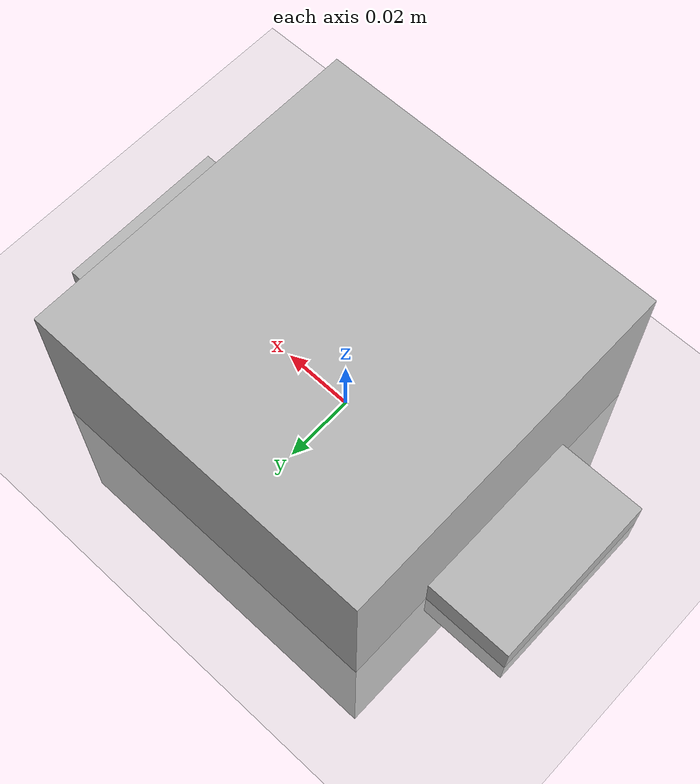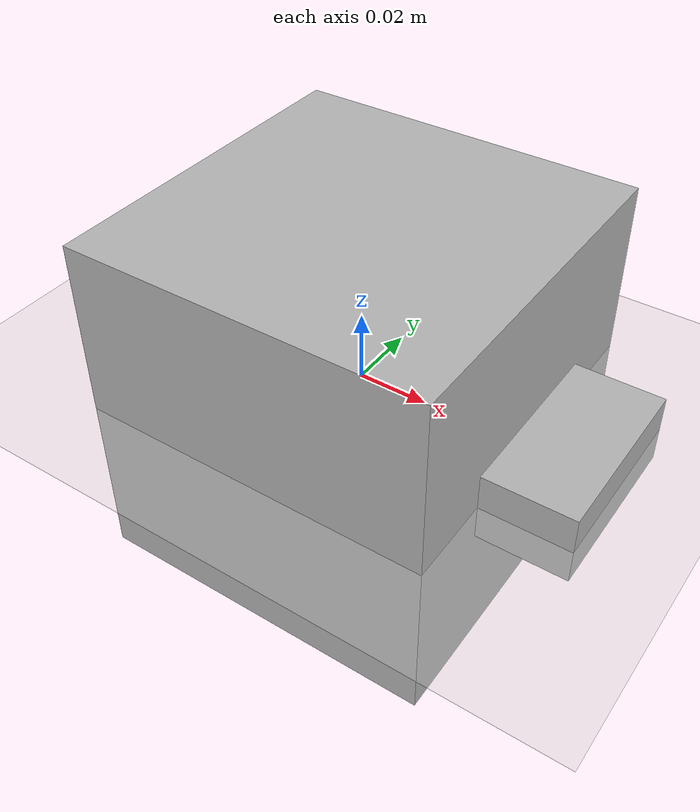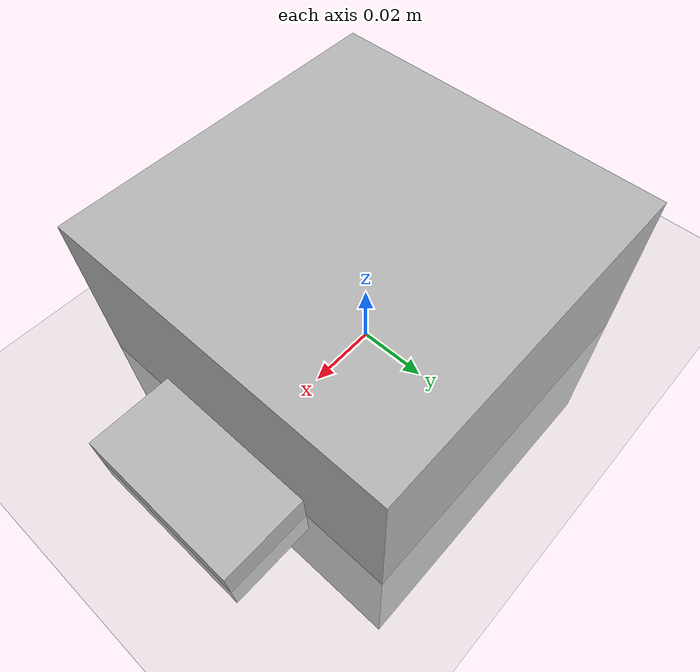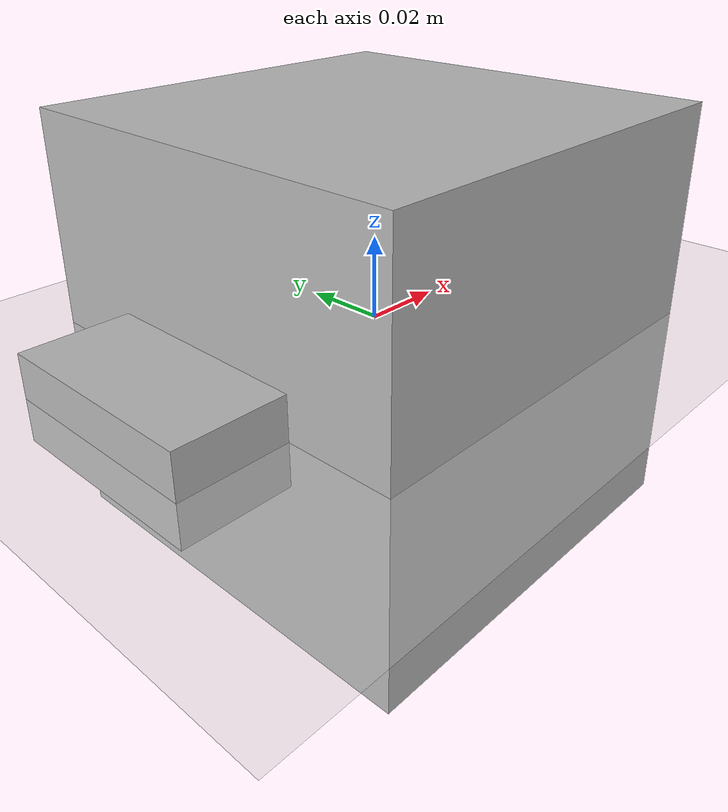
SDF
<?xml version="1.0" ?>
<sdf version="1.7">
  <world name="empty_walk_bot">

    <include>
      <uri>https://fuel.ignitionrobotics.org/1.0/OpenRobotics/models/Sun</uri>
    </include>

    <include>
      <uri>https://fuel.ignitionrobotics.org/1.0/OpenRobotics/models/Ground Plane</uri>
    </include>

    <model name='walk_bot'>
      <link name='dummy'>
        <inertial>
          <pose>0 0 0 0 0 0</pose>
          <mass>1</mass>
          <inertia>
            <ixx>0.00167</ixx>
            <ixy>0</ixy>
            <ixz>0</ixz>
            <iyy>0.00167</iyy>
            <iyz>0</iyz>
            <izz>0.00167</izz>
          </inertia>
        </inertial>
        <collision name='dummy_fixed_joint_lump__base_link_collision'>
          <pose>0 0 0 0 0 0</pose>
          <geometry>
            <box>
              <size>0.1 0.1 0.1</size>
            </box>
          </geometry>
        </collision>
        <visual name='dummy_fixed_joint_lump__base_link_visual'>
          <pose>0 0 0 0 0 0</pose>
          <geometry>
            <box>
              <size>0.1 0.1 0.1</size>
            </box>
          </geometry>
        </visual>
      </link>
      <joint name='l_hip_pitch' type='revolute'>
        <pose relative_to='dummy'>0 0 0 0 0 0</pose>
        <parent>dummy</parent>
        <child>l_hip1</child>
        <axis>
          <xyz>0 1 0</xyz>
          <limit>
            <lower>-3.1400000000000001</lower>
            <upper>3.1400000000000001</upper>
            <effort>20</effort>
            <velocity>2</velocity>
          </limit>
          <dynamics>
            <spring_reference>0</spring_reference>
            <spring_stiffness>0</spring_stiffness>
          </dynamics>
        </axis>
      </joint>
      <link name='l_hip1'>
        <pose relative_to='l_hip_pitch'>0 0 0 0 0 0</pose>
        <inertial>
          <pose>0 0 0 0 0 0</pose>
          <mass>0.001</mass>
          <inertia>
            <ixx>1.0000000000000001e-05</ixx>
            <ixy>0</ixy>
            <ixz>0</ixz>
            <iyy>1.0000000000000001e-05</iyy>
            <iyz>0</iyz>
            <izz>1.0000000000000001e-05</izz>
          </inertia>
        </inertial>
      </link>
      <joint name='l_hip_roll' type='revolute'>
        <pose relative_to='l_hip1'>0 0 0 0 0 0</pose>
        <parent>l_hip1</parent>
        <child>l_hip2</child>
        <axis>
          <xyz>1 0 0</xyz>
          <limit>
            <lower>-3.1400000000000001</lower>
            <upper>3.1400000000000001</upper>
            <effort>20</effort>
            <velocity>2</velocity>
          </limit>
          <dynamics>
            <spring_reference>0</spring_reference>
            <spring_stiffness>0</spring_stiffness>
          </dynamics>
        </axis>
      </joint>
      <link name='l_hip2'>
        <pose relative_to='l_hip_roll'>0 0 0 0 0 0</pose>
        <inertial>
          <pose>0 0 0 0 0 0</pose>
          <mass>0.001</mass>
          <inertia>
            <ixx>1.0000000000000001e-05</ixx>
            <ixy>0</ixy>
            <ixz>0</ixz>
            <iyy>1.0000000000000001e-05</iyy>
            <iyz>0</iyz>
            <izz>1.0000000000000001e-05</izz>
          </inertia>
        </inertial>
      </link>
      <joint name='l_leg_extension' type='prismatic'>
        <pose relative_to='l_hip2'>0 0 0 0 0 0</pose>
        <parent>l_hip2</parent>
        <child>l_ankle1</child>
        <axis>
          <xyz>0 0 -1</xyz>
          <limit>
            <lower>0.20000000000000001</lower>
            <upper>0.40000000000000002</upper>
            <effort>20</effort>
            <velocity>2</velocity>
          </limit>
          <dynamics>
            <spring_reference>0</spring_reference>
            <spring_stiffness>0</spring_stiffness>
          </dynamics>
        </axis>
      </joint>
      <link name='l_ankle1'>
        <pose relative_to='l_leg_extension'>0 0 0 0 0 0</pose>
        <inertial>
          <pose>0 0 0 0 0 0</pose>
          <mass>0.001</mass>
          <inertia>
            <ixx>1.0000000000000001e-05</ixx>
            <ixy>0</ixy>
            <ixz>0</ixz>
            <iyy>1.0000000000000001e-05</iyy>
            <iyz>0</iyz>
            <izz>1.0000000000000001e-05</izz>
          </inertia>
        </inertial>
      </link>
      <joint name='l_ankle_yaw' type='revolute'>
        <pose relative_to='l_ankle1'>0 0 0 0 0 0</pose>
        <parent>l_ankle1</parent>
        <child>l_ankle2</child>
        <axis>
          <xyz>0 0 1</xyz>
          <limit>
            <lower>-3.1400000000000001</lower>
            <upper>3.1400000000000001</upper>
            <effort>20</effort>
            <velocity>2</velocity>
          </limit>
          <dynamics>
            <spring_reference>0</spring_reference>
            <spring_stiffness>0</spring_stiffness>
          </dynamics>
        </axis>
      </joint>
      <link name='l_ankle2'>
        <pose relative_to='l_ankle_yaw'>0 0 0 0 0 0</pose>
        <inertial>
          <pose>0 0 0 0 0 0</pose>
          <mass>0.001</mass>
          <inertia>
            <ixx>1.0000000000000001e-05</ixx>
            <ixy>0</ixy>
            <ixz>0</ixz>
            <iyy>1.0000000000000001e-05</iyy>
            <iyz>0</iyz>
            <izz>1.0000000000000001e-05</izz>
          </inertia>
        </inertial>
      </link>
      <joint name='l_ankle_pitch' type='revolute'>
        <pose relative_to='l_ankle2'>0 0 0 0 0 0</pose>
        <parent>l_ankle2</parent>
        <child>l_ankle3</child>
        <axis>
          <xyz>0 1 0</xyz>
          <limit>
            <lower>-3.1400000000000001</lower>
            <upper>3.1400000000000001</upper>
            <effort>20</effort>
            <velocity>2</velocity>
          </limit>
          <dynamics>
            <spring_reference>0</spring_reference>
            <spring_stiffness>0</spring_stiffness>
          </dynamics>
        </axis>
      </joint>
      <link name='l_ankle3'>
        <pose relative_to='l_ankle_pitch'>0 0 0 0 0 0</pose>
        <inertial>
          <pose>0 0 0 0 0 0</pose>
          <mass>0.001</mass>
          <inertia>
            <ixx>1.0000000000000001e-05</ixx>
            <ixy>0</ixy>
            <ixz>0</ixz>
            <iyy>1.0000000000000001e-05</iyy>
            <iyz>0</iyz>
            <izz>1.0000000000000001e-05</izz>
          </inertia>
        </inertial>
      </link>
      <joint name='l_ankle_roll' type='revolute'>
        <pose relative_to='l_ankle3'>0 0 0 0 0 0</pose>
        <parent>l_ankle3</parent>
        <child>l_sole</child>
        <axis>
          <xyz>1 0 0</xyz>
          <limit>
            <lower>-3.1400000000000001</lower>
            <upper>3.1400000000000001</upper>
            <effort>20</effort>
            <velocity>2</velocity>
          </limit>
          <dynamics>
            <spring_reference>0</spring_reference>
            <spring_stiffness>0</spring_stiffness>
          </dynamics>
        </axis>
      </joint>
      <link name='l_sole'>
        <pose relative_to='l_ankle_roll'>0 0 0 0 0 0</pose>
        <inertial>
          <pose>0 0 0 0 0 0</pose>
          <mass>0.29999999999999999</mass>
          <inertia>
            <ixx>0.00072499999999999995</ixx>
            <ixy>0</ixy>
            <ixz>0</ixz>
            <iyy>0.0062500000000000003</iyy>
            <iyz>0</iyz>
            <izz>0.0057250000000000001</izz>
          </inertia>
        </inertial>
        <collision name='l_sole_collision'>
          <pose>0 0 0 0 0 0</pose>
          <geometry>
            <box>
              <size>0.15 0.05 0.02</size>
            </box>
          </geometry>
          <surface>
            <contact>
              <ode/>
            </contact>
            <friction>
              <ode/>
            </friction>
          </surface>
        </collision>
        <visual name='l_sole_visual'>
          <pose>0 0 0 0 0 0</pose>
          <geometry>
            <box>
              <size>0.15 0.05 0.02</size>
            </box>
          </geometry>
        </visual>
        <sensor name='sensor_contact' type='contact'>
          <contact>
            <collision>l_sole_collision</collision>
            <topic>/l_sole_contact</topic>
          </contact>
          <always_on>true</always_on>
          <update_rate>100</update_rate>
          <visualize>true</visualize>
          <plugin name='ignition::gazebo::systems::Contact' filename='ignition-gazebo-contact-system'/>
        </sensor>
      </link>
      <joint name='r_hip_pitch' type='revolute'>
        <pose relative_to='dummy'>0 0 0 0 0 0</pose>
        <parent>dummy</parent>
        <child>r_hip1</child>
        <axis>
          <xyz>0 1 0</xyz>
          <limit>
            <lower>-3.1400000000000001</lower>
            <upper>3.1400000000000001</upper>
            <effort>20</effort>
            <velocity>2</velocity>
          </limit>
          <dynamics>
            <spring_reference>0</spring_reference>
            <spring_stiffness>0</spring_stiffness>
          </dynamics>
        </axis>
      </joint>
      <link name='r_hip1'>
        <pose relative_to='r_hip_pitch'>0 0 0 0 0 0</pose>
        <inertial>
          <pose>0 0 0 0 0 0</pose>
          <mass>0.001</mass>
          <inertia>
            <ixx>1.0000000000000001e-05</ixx>
            <ixy>0</ixy>
            <ixz>0</ixz>
            <iyy>1.0000000000000001e-05</iyy>
            <iyz>0</iyz>
            <izz>1.0000000000000001e-05</izz>
          </inertia>
        </inertial>
      </link>
      <joint name='r_hip_roll' type='revolute'>
        <pose relative_to='r_hip1'>0 0 0 0 0 0</pose>
        <parent>r_hip1</parent>
        <child>r_hip2</child>
        <axis>
          <xyz>1 0 0</xyz>
          <limit>
            <lower>-3.1400000000000001</lower>
            <upper>3.1400000000000001</upper>
            <effort>20</effort>
            <velocity>2</velocity>
          </limit>
          <dynamics>
            <spring_reference>0</spring_reference>
            <spring_stiffness>0</spring_stiffness>
          </dynamics>
        </axis>
      </joint>
      <link name='r_hip2'>
        <pose relative_to='r_hip_roll'>0 0 0 0 0 0</pose>
        <inertial>
          <pose>0 0 0 0 0 0</pose>
          <mass>0.001</mass>
          <inertia>
            <ixx>1.0000000000000001e-05</ixx>
            <ixy>0</ixy>
            <ixz>0</ixz>
            <iyy>1.0000000000000001e-05</iyy>
            <iyz>0</iyz>
            <izz>1.0000000000000001e-05</izz>
          </inertia>
        </inertial>
      </link>
      <joint name='r_leg_extension' type='prismatic'>
        <pose relative_to='r_hip2'>0 0 0 0 0 0</pose>
        <parent>r_hip2</parent>
        <child>r_ankle1</child>
        <axis>
          <xyz>0 0 -1</xyz>
          <limit>
            <lower>0.20000000000000001</lower>
            <upper>0.40000000000000002</upper>
            <effort>20</effort>
            <velocity>2</velocity>
          </limit>
          <dynamics>
            <spring_reference>0</spring_reference>
            <spring_stiffness>0</spring_stiffness>
          </dynamics>
        </axis>
      </joint>
      <link name='r_ankle1'>
        <pose relative_to='r_leg_extension'>0 0 0 0 0 0</pose>
        <inertial>
          <pose>0 0 0 0 0 0</pose>
          <mass>0.001</mass>
          <inertia>
            <ixx>1.0000000000000001e-05</ixx>
            <ixy>0</ixy>
            <ixz>0</ixz>
            <iyy>1.0000000000000001e-05</iyy>
            <iyz>0</iyz>
            <izz>1.0000000000000001e-05</izz>
          </inertia>
        </inertial>
      </link>
      <joint name='r_ankle_yaw' type='revolute'>
        <pose relative_to='r_ankle1'>0 0 0 0 0 0</pose>
        <parent>r_ankle1</parent>
        <child>r_ankle2</child>
        <axis>
          <xyz>0 0 1</xyz>
          <limit>
            <lower>-3.1400000000000001</lower>
            <upper>3.1400000000000001</upper>
            <effort>20</effort>
            <velocity>2</velocity>
          </limit>
          <dynamics>
            <spring_reference>0</spring_reference>
            <spring_stiffness>0</spring_stiffness>
          </dynamics>
        </axis>
      </joint>
      <link name='r_ankle2'>
        <pose relative_to='r_ankle_yaw'>0 0 0 0 0 0</pose>
        <inertial>
          <pose>0 0 0 0 0 0</pose>
          <mass>0.001</mass>
          <inertia>
            <ixx>1.0000000000000001e-05</ixx>
            <ixy>0</ixy>
            <ixz>0</ixz>
            <iyy>1.0000000000000001e-05</iyy>
            <iyz>0</iyz>
            <izz>1.0000000000000001e-05</izz>
          </inertia>
        </inertial>
      </link>
      <joint name='r_ankle_pitch' type='revolute'>
        <pose relative_to='r_ankle2'>0 0 0 0 0 0</pose>
        <parent>r_ankle2</parent>
        <child>r_ankle3</child>
        <axis>
          <xyz>0 1 0</xyz>
          <limit>
            <lower>-3.1400000000000001</lower>
            <upper>3.1400000000000001</upper>
            <effort>20</effort>
            <velocity>2</velocity>
          </limit>
          <dynamics>
            <spring_reference>0</spring_reference>
            <spring_stiffness>0</spring_stiffness>
          </dynamics>
        </axis>
      </joint>
      <link name='r_ankle3'>
        <pose relative_to='r_ankle_pitch'>0 0 0 0 0 0</pose>
        <inertial>
          <pose>0 0 0 0 0 0</pose>
          <mass>0.001</mass>
          <inertia>
            <ixx>1.0000000000000001e-05</ixx>
            <ixy>0</ixy>
            <ixz>0</ixz>
            <iyy>1.0000000000000001e-05</iyy>
            <iyz>0</iyz>
            <izz>1.0000000000000001e-05</izz>
          </inertia>
        </inertial>
      </link>
      <joint name='r_ankle_roll' type='revolute'>
        <pose relative_to='r_ankle3'>0 0 0 0 0 0</pose>
        <parent>r_ankle3</parent>
        <child>r_sole</child>
        <axis>
          <xyz>1 0 0</xyz>
          <limit>
            <lower>-3.1400000000000001</lower>
            <upper>3.1400000000000001</upper>
            <effort>20</effort>
            <velocity>2</velocity>
          </limit>
          <dynamics>
            <spring_reference>0</spring_reference>
            <spring_stiffness>0</spring_stiffness>
          </dynamics>
        </axis>
      </joint>
      <link name='r_sole'>
        <pose relative_to='r_ankle_roll'>0 0 0 0 0 0</pose>
        <inertial>
          <pose>0 0 0 0 0 0</pose>
          <mass>0.29999999999999999</mass>
          <inertia>
            <ixx>0.00072499999999999995</ixx>
            <ixy>0</ixy>
            <ixz>0</ixz>
            <iyy>0.0062500000000000003</iyy>
            <iyz>0</iyz>
            <izz>0.0057250000000000001</izz>
          </inertia>
        </inertial>
        <collision name='r_sole_collision'>
          <pose>0 0 0 0 0 0</pose>
          <geometry>
            <box>
              <size>0.15 0.05 0.02</size>
            </box>
          </geometry>
          <surface>
            <contact>
              <ode/>
            </contact>
            <friction>
              <ode/>
            </friction>
          </surface>
        </collision>
        <visual name='r_sole_visual'>
          <pose>0 0 0 0 0 0</pose>
          <geometry>
            <box>
              <size>0.15 0.05 0.02</size>
            </box>
          </geometry>
        </visual>
        <sensor name='sensor_contact' type='contact'>
          <contact>
            <collision>r_sole_collision</collision>
            <topic>/r_sole_contact</topic>
          </contact>
          <always_on>true</always_on>
          <update_rate>100</update_rate>
          <visualize>true</visualize>
          <plugin name='ignition::gazebo::systems::Contact' filename='ignition-gazebo-contact-system'/>
        </sensor>
      </link>
      <static>false</static>
      <plugin name='ignition::gazebo::systems::JointStatePublisher' filename='libignition-gazebo-joint-state-publisher-system.so'>
        <topic>joint_states</topic>
        <joint_name>l_hip_pitch</joint_name>
        <joint_name>r_hip_pitch</joint_name>
        <joint_name>l_hip_roll</joint_name>
        <joint_name>r_hip_roll</joint_name>
        <joint_name>l_leg_extension</joint_name>
        <joint_name>r_leg_extension</joint_name>
        <joint_name>l_ankle_yaw</joint_name>
        <joint_name>r_ankle_yaw</joint_name>
        <joint_name>l_ankle_pitch</joint_name>
        <joint_name>r_ankle_pitch</joint_name>
        <joint_name>l_ankle_roll</joint_name>
        <joint_name>r_ankle_roll</joint_name>
      </plugin>
      <plugin name='ignition::gazebo::systems::JointPositionController' filename='libignition-gazebo-joint-position-controller-system'>
        <joint_name>l_hip_pitch</joint_name>
        <p_gain>1000</p_gain>
        <i_gain>0</i_gain>
        <d_gain>0</d_gain>
      </plugin>
      <plugin name='ignition::gazebo::systems::JointPositionController' filename='libignition-gazebo-joint-position-controller-system'>
        <joint_name>r_hip_pitch</joint_name>
        <p_gain>1000</p_gain>
        <i_gain>0</i_gain>
        <d_gain>0</d_gain>
      </plugin>
      <plugin name='ignition::gazebo::systems::JointPositionController' filename='libignition-gazebo-joint-position-controller-system'>
        <joint_name>l_hip_roll</joint_name>
        <p_gain>1000</p_gain>
        <i_gain>0</i_gain>
        <d_gain>0</d_gain>
      </plugin>
      <plugin name='ignition::gazebo::systems::JointPositionController' filename='libignition-gazebo-joint-position-controller-system'>
        <joint_name>r_hip_roll</joint_name>
        <p_gain>1000</p_gain>
        <i_gain>0</i_gain>
        <d_gain>0</d_gain>
      </plugin>
      <plugin name='ignition::gazebo::systems::JointPositionController' filename='libignition-gazebo-joint-position-controller-system'>
        <joint_name>l_leg_extension</joint_name>
        <p_gain>1000</p_gain>
        <i_gain>10</i_gain>
        <d_gain>10</d_gain>
      </plugin>
      <plugin name='ignition::gazebo::systems::JointPositionController' filename='libignition-gazebo-joint-position-controller-system'>
        <joint_name>r_leg_extension</joint_name>
        <p_gain>1000</p_gain>
        <i_gain>10</i_gain>
        <d_gain>10</d_gain>
      </plugin>
      <plugin name='ignition::gazebo::systems::JointPositionController' filename='libignition-gazebo-joint-position-controller-system'>
        <joint_name>l_ankle_yaw</joint_name>
        <p_gain>100</p_gain>
        <i_gain>0</i_gain>
        <d_gain>0</d_gain>
      </plugin>
      <plugin name='ignition::gazebo::systems::JointPositionController' filename='libignition-gazebo-joint-position-controller-system'>
        <joint_name>r_ankle_yaw</joint_name>
        <p_gain>100</p_gain>
        <i_gain>0</i_gain>
        <d_gain>0</d_gain>
      </plugin>
      <plugin name='ignition::gazebo::systems::JointPositionController' filename='libignition-gazebo-joint-position-controller-system'>
        <joint_name>l_ankle_pitch</joint_name>
        <p_gain>100</p_gain>
        <i_gain>0</i_gain>
        <d_gain>0</d_gain>
      </plugin>
      <plugin name='ignition::gazebo::systems::JointPositionController' filename='libignition-gazebo-joint-position-controller-system'>
        <joint_name>r_ankle_pitch</joint_name>
        <p_gain>100</p_gain>
        <i_gain>0</i_gain>
        <d_gain>0</d_gain>
      </plugin>
      <plugin name='ignition::gazebo::systems::JointPositionController' filename='libignition-gazebo-joint-position-controller-system'>
        <joint_name>l_ankle_roll</joint_name>
        <p_gain>100</p_gain>
        <i_gain>0</i_gain>
        <d_gain>0</d_gain>
      </plugin>
      <plugin name='ignition::gazebo::systems::JointPositionController' filename='libignition-gazebo-joint-position-controller-system'>
        <joint_name>r_ankle_roll</joint_name>
        <p_gain>100</p_gain>
        <i_gain>0</i_gain>
        <d_gain>0</d_gain>
      </plugin>
    </model>

  </world>
</sdf>
